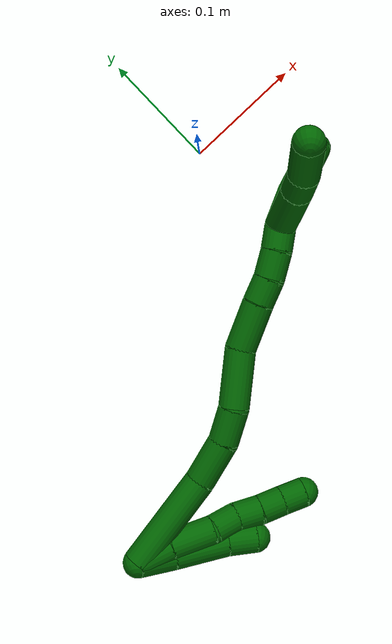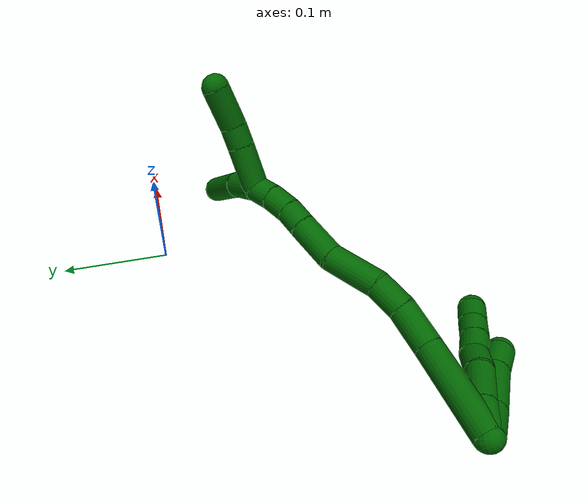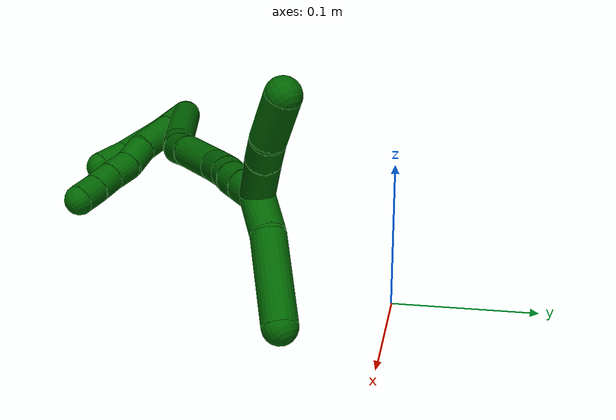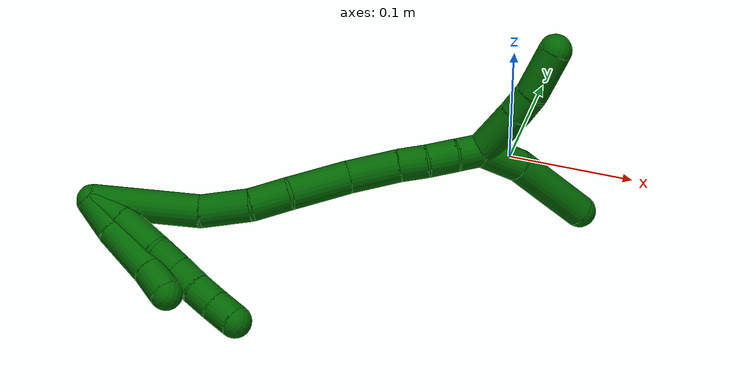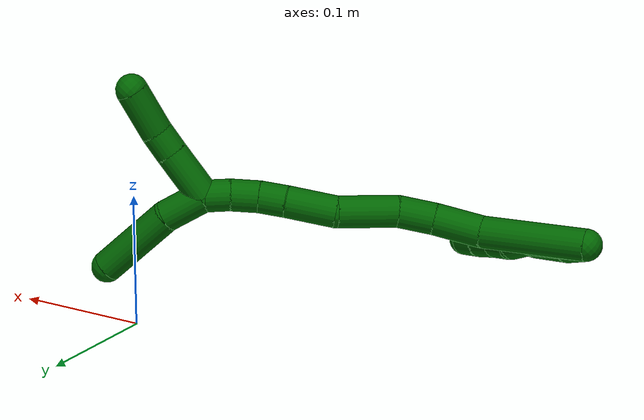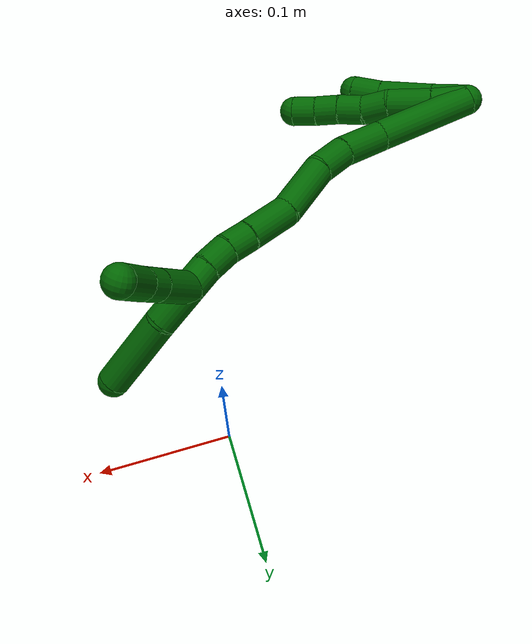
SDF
<sdf version="1.7">
 <world name="default">
  <model name="6">
   <static>0</static>
   <link name="6">
    <collision name="collision-cylinder-e_1_2_8">
     <pose>0.012249 -0.004984 -0.006094 2.45609 0.999569 1.9839</pose>
     <geometry><cylinder><radius>0.0125</radius><length>0.029121</length></cylinder></geometry>
     <surface>
      <friction><ode><mu>1.16</mu><mu2>1.16</mu2><slip1>0</slip1><slip2>0</slip2></ode></friction>
      <contact><ode><kp>1e+06</kp><kd>1</kd><max_vel>0</max_vel><min_depth>0.001</min_depth></ode></contact>
     </surface>
    </collision>
    <visual name="visual-cylinder-e_1_2_8">
     <pose>0.012249 -0.004984 -0.006094 2.45609 0.999569 1.9839</pose>
     <geometry><cylinder><radius>0.0125</radius><length>0.029121</length></cylinder></geometry>
     <material><ambient>0 0.392157 0.003922 1</ambient></material>
    </visual>
    <collision name="collision-cylinder-e_2_8_9">
     <pose>0.039446 -0.018232 -0.018688 2.23725 0.957837 1.63745</pose>
     <geometry><cylinder><radius>0.0125</radius><length>0.036552</length></cylinder></geometry>
     <surface>
      <friction><ode><mu>1.16</mu><mu2>1.16</mu2><slip1>0</slip1><slip2>0</slip2></ode></friction>
      <contact><ode><kp>1e+06</kp><kd>1</kd><max_vel>0</max_vel><min_depth>0.001</min_depth></ode></contact>
     </surface>
    </collision>
    <visual name="visual-cylinder-e_2_8_9">
     <pose>0.039446 -0.018232 -0.018688 2.23725 0.957837 1.63745</pose>
     <geometry><cylinder><radius>0.0125</radius><length>0.036552</length></cylinder></geometry>
     <material><ambient>0 0.392157 0.003922 1</ambient></material>
    </visual>
    <collision name="collision-cylinder-e_3_9_10">
     <pose>0.062225 -0.031756 -0.031349 2.43497 0.768327 1.66248</pose>
     <geometry><cylinder><radius>0.0125</radius><length>0.022534</length></cylinder></geometry>
     <surface>
      <friction><ode><mu>1.16</mu><mu2>1.16</mu2><slip1>0</slip1><slip2>0</slip2></ode></friction>
      <contact><ode><kp>1e+06</kp><kd>1</kd><max_vel>0</max_vel><min_depth>0.001</min_depth></ode></contact>
     </surface>
    </collision>
    <visual name="visual-cylinder-e_3_9_10">
     <pose>0.062225 -0.031756 -0.031349 2.43497 0.768327 1.66248</pose>
     <geometry><cylinder><radius>0.0125</radius><length>0.022534</length></cylinder></geometry>
     <material><ambient>0 0.392157 0.003922 1</ambient></material>
    </visual>
    <collision name="collision-cylinder-e_4_10_11">
     <pose>0.078904 -0.042249 -0.040952 2.15237 0.954896 1.52925</pose>
     <geometry><cylinder><radius>0.0125</radius><length>0.021682</length></cylinder></geometry>
     <surface>
      <friction><ode><mu>1.16</mu><mu2>1.16</mu2><slip1>0</slip1><slip2>0</slip2></ode></friction>
      <contact><ode><kp>1e+06</kp><kd>1</kd><max_vel>0</max_vel><min_depth>0.001</min_depth></ode></contact>
     </surface>
    </collision>
    <visual name="visual-cylinder-e_4_10_11">
     <pose>0.078904 -0.042249 -0.040952 2.15237 0.954896 1.52925</pose>
     <geometry><cylinder><radius>0.0125</radius><length>0.021682</length></cylinder></geometry>
     <material><ambient>0 0.392157 0.003922 1</ambient></material>
    </visual>
    <collision name="collision-cylinder-e_5_11_12">
     <pose>0.095772 -0.051917 -0.048397 2.30535 0.930435 1.69247</pose>
     <geometry><cylinder><radius>0.0125</radius><length>0.020001</length></cylinder></geometry>
     <surface>
      <friction><ode><mu>1.16</mu><mu2>1.16</mu2><slip1>0</slip1><slip2>0</slip2></ode></friction>
      <contact><ode><kp>1e+06</kp><kd>1</kd><max_vel>0</max_vel><min_depth>0.001</min_depth></ode></contact>
     </surface>
    </collision>
    <visual name="visual-cylinder-e_5_11_12">
     <pose>0.095772 -0.051917 -0.048397 2.30535 0.930435 1.69247</pose>
     <geometry><cylinder><radius>0.0125</radius><length>0.020001</length></cylinder></geometry>
     <material><ambient>0 0.392157 0.003922 1</ambient></material>
    </visual>
    <collision name="collision-cylinder-e_6_12_6">
     <pose>0.112231 -0.060509 -0.055949 2.27723 0.996136 1.73466</pose>
     <geometry><cylinder><radius>0.0125</radius><length>0.020111</length></cylinder></geometry>
     <surface>
      <friction><ode><mu>1.16</mu><mu2>1.16</mu2><slip1>0</slip1><slip2>0</slip2></ode></friction>
      <contact><ode><kp>1e+06</kp><kd>1</kd><max_vel>0</max_vel><min_depth>0.001</min_depth></ode></contact>
     </surface>
    </collision>
    <visual name="visual-cylinder-e_6_12_6">
     <pose>0.112231 -0.060509 -0.055949 2.27723 0.996136 1.73466</pose>
     <geometry><cylinder><radius>0.0125</radius><length>0.020111</length></cylinder></geometry>
     <material><ambient>0 0.392157 0.003922 1</ambient></material>
    </visual>
    <collision name="collision-cylinder-e_1_2_13">
     <pose>0.010677 -0.009457 -0.004768 2.03783 0.78946 1.18973</pose>
     <geometry><cylinder><radius>0.0125</radius><length>0.030077</length></cylinder></geometry>
     <surface>
      <friction><ode><mu>1.16</mu><mu2>1.16</mu2><slip1>0</slip1><slip2>0</slip2></ode></friction>
      <contact><ode><kp>1e+06</kp><kd>1</kd><max_vel>0</max_vel><min_depth>0.001</min_depth></ode></contact>
     </surface>
    </collision>
    <visual name="visual-cylinder-e_1_2_13">
     <pose>0.010677 -0.009457 -0.004768 2.03783 0.78946 1.18973</pose>
     <geometry><cylinder><radius>0.0125</radius><length>0.030077</length></cylinder></geometry>
     <material><ambient>0 0.392157 0.003922 1</ambient></material>
    </visual>
    <collision name="collision-cylinder-e_2_13_14">
     <pose>0.039448 -0.031001 -0.015984 2.06079 0.922724 1.38389</pose>
     <geometry><cylinder><radius>0.0125</radius><length>0.045391</length></cylinder></geometry>
     <surface>
      <friction><ode><mu>1.16</mu><mu2>1.16</mu2><slip1>0</slip1><slip2>0</slip2></ode></friction>
      <contact><ode><kp>1e+06</kp><kd>1</kd><max_vel>0</max_vel><min_depth>0.001</min_depth></ode></contact>
     </surface>
    </collision>
    <visual name="visual-cylinder-e_2_13_14">
     <pose>0.039448 -0.031001 -0.015984 2.06079 0.922724 1.38389</pose>
     <geometry><cylinder><radius>0.0125</radius><length>0.045391</length></cylinder></geometry>
     <material><ambient>0 0.392157 0.003922 1</ambient></material>
    </visual>
    <collision name="collision-cylinder-e_3_14_5">
     <pose>0.067198 -0.050313 -0.024673 1.87161 0.906306 1.16802</pose>
     <geometry><cylinder><radius>0.0125</radius><length>0.024532</length></cylinder></geometry>
     <surface>
      <friction><ode><mu>1.16</mu><mu2>1.16</mu2><slip1>0</slip1><slip2>0</slip2></ode></friction>
      <contact><ode><kp>1e+06</kp><kd>1</kd><max_vel>0</max_vel><min_depth>0.001</min_depth></ode></contact>
     </surface>
    </collision>
    <visual name="visual-cylinder-e_3_14_5">
     <pose>0.067198 -0.050313 -0.024673 1.87161 0.906306 1.16802</pose>
     <geometry><cylinder><radius>0.0125</radius><length>0.024532</length></cylinder></geometry>
     <material><ambient>0 0.392157 0.003922 1</ambient></material>
    </visual>
    <collision name="collision-cylinder-e_1_2_15">
     <pose>0.033321 0.005866 -0.02351 -2.8971 0.942052 -2.66813</pose>
     <geometry><cylinder><radius>0.0125</radius><length>0.0824</length></cylinder></geometry>
     <surface>
      <friction><ode><mu>1.16</mu><mu2>1.16</mu2><slip1>0</slip1><slip2>0</slip2></ode></friction>
      <contact><ode><kp>1e+06</kp><kd>1</kd><max_vel>0</max_vel><min_depth>0.001</min_depth></ode></contact>
     </surface>
    </collision>
    <visual name="visual-cylinder-e_1_2_15">
     <pose>0.033321 0.005866 -0.02351 -2.8971 0.942052 -2.66813</pose>
     <geometry><cylinder><radius>0.0125</radius><length>0.0824</length></cylinder></geometry>
     <material><ambient>0 0.392157 0.003922 1</ambient></material>
    </visual>
    <collision name="collision-cylinder-e_2_15_16">
     <pose>0.082044 0.018308 -0.056155 -2.51756 0.93968 -2.00973</pose>
     <geometry><cylinder><radius>0.0125</radius><length>0.038153</length></cylinder></geometry>
     <surface>
      <friction><ode><mu>1.16</mu><mu2>1.16</mu2><slip1>0</slip1><slip2>0</slip2></ode></friction>
      <contact><ode><kp>1e+06</kp><kd>1</kd><max_vel>0</max_vel><min_depth>0.001</min_depth></ode></contact>
     </surface>
    </collision>
    <visual name="visual-cylinder-e_2_15_16">
     <pose>0.082044 0.018308 -0.056155 -2.51756 0.93968 -2.00973</pose>
     <geometry><cylinder><radius>0.0125</radius><length>0.038153</length></cylinder></geometry>
     <material><ambient>0 0.392157 0.003922 1</ambient></material>
    </visual>
    <collision name="collision-cylinder-e_3_16_17">
     <pose>0.107171 0.032513 -0.073106 -2.3684 0.727535 -1.50387</pose>
     <geometry><cylinder><radius>0.0125</radius><length>0.029248</length></cylinder></geometry>
     <surface>
      <friction><ode><mu>1.16</mu><mu2>1.16</mu2><slip1>0</slip1><slip2>0</slip2></ode></friction>
      <contact><ode><kp>1e+06</kp><kd>1</kd><max_vel>0</max_vel><min_depth>0.001</min_depth></ode></contact>
     </surface>
    </collision>
    <visual name="visual-cylinder-e_3_16_17">
     <pose>0.107171 0.032513 -0.073106 -2.3684 0.727535 -1.50387</pose>
     <geometry><cylinder><radius>0.0125</radius><length>0.029248</length></cylinder></geometry>
     <material><ambient>0 0.392157 0.003922 1</ambient></material>
    </visual>
    <collision name="collision-cylinder-e_4_17_18">
     <pose>0.128198 0.052906 -0.09734 -2.48071 0.497772 -1.27536</pose>
     <geometry><cylinder><radius>0.0125</radius><length>0.047338</length></cylinder></geometry>
     <surface>
      <friction><ode><mu>1.16</mu><mu2>1.16</mu2><slip1>0</slip1><slip2>0</slip2></ode></friction>
      <contact><ode><kp>1e+06</kp><kd>1</kd><max_vel>0</max_vel><min_depth>0.001</min_depth></ode></contact>
     </surface>
    </collision>
    <visual name="visual-cylinder-e_4_17_18">
     <pose>0.128198 0.052906 -0.09734 -2.48071 0.497772 -1.27536</pose>
     <geometry><cylinder><radius>0.0125</radius><length>0.047338</length></cylinder></geometry>
     <material><ambient>0 0.392157 0.003922 1</ambient></material>
    </visual>
    <collision name="collision-cylinder-e_5_18_19">
     <pose>0.1534 0.074699 -0.124317 -2.43424 0.78571 -1.68602</pose>
     <geometry><cylinder><radius>0.0125</radius><length>0.039305</length></cylinder></geometry>
     <surface>
      <friction><ode><mu>1.16</mu><mu2>1.16</mu2><slip1>0</slip1><slip2>0</slip2></ode></friction>
      <contact><ode><kp>1e+06</kp><kd>1</kd><max_vel>0</max_vel><min_depth>0.001</min_depth></ode></contact>
     </surface>
    </collision>
    <visual name="visual-cylinder-e_5_18_19">
     <pose>0.1534 0.074699 -0.124317 -2.43424 0.78571 -1.68602</pose>
     <geometry><cylinder><radius>0.0125</radius><length>0.039305</length></cylinder></geometry>
     <material><ambient>0 0.392157 0.003922 1</ambient></material>
    </visual>
    <collision name="collision-cylinder-e_6_19_20">
     <pose>0.174969 0.087921 -0.1408 -2.52544 0.812917 -1.86837</pose>
     <geometry><cylinder><radius>0.0125</radius><length>0.021117</length></cylinder></geometry>
     <surface>
      <friction><ode><mu>1.16</mu><mu2>1.16</mu2><slip1>0</slip1><slip2>0</slip2></ode></friction>
      <contact><ode><kp>1e+06</kp><kd>1</kd><max_vel>0</max_vel><min_depth>0.001</min_depth></ode></contact>
     </surface>
    </collision>
    <visual name="visual-cylinder-e_6_19_20">
     <pose>0.174969 0.087921 -0.1408 -2.52544 0.812917 -1.86837</pose>
     <geometry><cylinder><radius>0.0125</radius><length>0.021117</length></cylinder></geometry>
     <material><ambient>0 0.392157 0.003922 1</ambient></material>
    </visual>
    <collision name="collision-cylinder-e_7_20_21">
     <pose>0.189338 0.097294 -0.153943 -2.5193 0.646092 -1.61095</pose>
     <geometry><cylinder><radius>0.0125</radius><length>0.022257</length></cylinder></geometry>
     <surface>
      <friction><ode><mu>1.16</mu><mu2>1.16</mu2><slip1>0</slip1><slip2>0</slip2></ode></friction>
      <contact><ode><kp>1e+06</kp><kd>1</kd><max_vel>0</max_vel><min_depth>0.001</min_depth></ode></contact>
     </surface>
    </collision>
    <visual name="visual-cylinder-e_7_20_21">
     <pose>0.189338 0.097294 -0.153943 -2.5193 0.646092 -1.61095</pose>
     <geometry><cylinder><radius>0.0125</radius><length>0.022257</length></cylinder></geometry>
     <material><ambient>0 0.392157 0.003922 1</ambient></material>
    </visual>
    <collision name="collision-cylinder-e_8_21_1">
     <pose>0.201045 0.107299 -0.168475 -2.55834 0.51921 -1.4487</pose>
     <geometry><cylinder><radius>0.0125</radius><length>0.020182</length></cylinder></geometry>
     <surface>
      <friction><ode><mu>1.16</mu><mu2>1.16</mu2><slip1>0</slip1><slip2>0</slip2></ode></friction>
      <contact><ode><kp>1e+06</kp><kd>1</kd><max_vel>0</max_vel><min_depth>0.001</min_depth></ode></contact>
     </surface>
    </collision>
    <visual name="visual-cylinder-e_8_21_1">
     <pose>0.201045 0.107299 -0.168475 -2.55834 0.51921 -1.4487</pose>
     <geometry><cylinder><radius>0.0125</radius><length>0.020182</length></cylinder></geometry>
     <material><ambient>0 0.392157 0.003922 1</ambient></material>
    </visual>
    <collision name="collision-cylinder-e_1_1_22">
     <pose>0.212555 0.111865 -0.191645 3.12526 0.389148 3.05874</pose>
     <geometry><cylinder><radius>0.0125</radius><length>0.034281</length></cylinder></geometry>
     <surface>
      <friction><ode><mu>1.16</mu><mu2>1.16</mu2><slip1>0</slip1><slip2>0</slip2></ode></friction>
      <contact><ode><kp>1e+06</kp><kd>1</kd><max_vel>0</max_vel><min_depth>0.001</min_depth></ode></contact>
     </surface>
    </collision>
    <visual name="visual-cylinder-e_1_1_22">
     <pose>0.212555 0.111865 -0.191645 3.12526 0.389148 3.05874</pose>
     <geometry><cylinder><radius>0.0125</radius><length>0.034281</length></cylinder></geometry>
     <material><ambient>0 0.392157 0.003922 1</ambient></material>
    </visual>
    <collision name="collision-cylinder-e_2_22_4">
     <pose>0.228059 0.104182 -0.23822 2.90448 0.277439 1.72894</pose>
     <geometry><cylinder><radius>0.0125</radius><length>0.065719</length></cylinder></geometry>
     <surface>
      <friction><ode><mu>1.16</mu><mu2>1.16</mu2><slip1>0</slip1><slip2>0</slip2></ode></friction>
      <contact><ode><kp>1e+06</kp><kd>1</kd><max_vel>0</max_vel><min_depth>0.001</min_depth></ode></contact>
     </surface>
    </collision>
    <visual name="visual-cylinder-e_2_22_4">
     <pose>0.228059 0.104182 -0.23822 2.90448 0.277439 1.72894</pose>
     <geometry><cylinder><radius>0.0125</radius><length>0.065719</length></cylinder></geometry>
     <material><ambient>0 0.392157 0.003922 1</ambient></material>
    </visual>
    <collision name="collision-cylinder-e_1_1_23">
     <pose>0.220814 0.126213 -0.17238 -1.33347 0.794495 -0.6378</pose>
     <geometry><cylinder><radius>0.0125</radius><length>0.041378</length></cylinder></geometry>
     <surface>
      <friction><ode><mu>1.16</mu><mu2>1.16</mu2><slip1>0</slip1><slip2>0</slip2></ode></friction>
      <contact><ode><kp>1e+06</kp><kd>1</kd><max_vel>0</max_vel><min_depth>0.001</min_depth></ode></contact>
     </surface>
    </collision>
    <visual name="visual-cylinder-e_1_1_23">
     <pose>0.220814 0.126213 -0.17238 -1.33347 0.794495 -0.6378</pose>
     <geometry><cylinder><radius>0.0125</radius><length>0.041378</length></cylinder></geometry>
     <material><ambient>0 0.392157 0.003922 1</ambient></material>
    </visual>
    <collision name="collision-cylinder-e_2_23_24">
     <pose>0.242429 0.147525 -0.167097 -1.31679 0.742864 -0.585302</pose>
     <geometry><cylinder><radius>0.0125</radius><length>0.020263</length></cylinder></geometry>
     <surface>
      <friction><ode><mu>1.16</mu><mu2>1.16</mu2><slip1>0</slip1><slip2>0</slip2></ode></friction>
      <contact><ode><kp>1e+06</kp><kd>1</kd><max_vel>0</max_vel><min_depth>0.001</min_depth></ode></contact>
     </surface>
    </collision>
    <visual name="visual-cylinder-e_2_23_24">
     <pose>0.242429 0.147525 -0.167097 -1.31679 0.742864 -0.585302</pose>
     <geometry><cylinder><radius>0.0125</radius><length>0.020263</length></cylinder></geometry>
     <material><ambient>0 0.392157 0.003922 1</ambient></material>
    </visual>
    <collision name="collision-cylinder-e_3_24_3">
     <pose>0.259422 0.170224 -0.160171 -1.25533 0.557062 -0.409157</pose>
     <geometry><cylinder><radius>0.0125</radius><length>0.038359</length></cylinder></geometry>
     <surface>
      <friction><ode><mu>1.16</mu><mu2>1.16</mu2><slip1>0</slip1><slip2>0</slip2></ode></friction>
      <contact><ode><kp>1e+06</kp><kd>1</kd><max_vel>0</max_vel><min_depth>0.001</min_depth></ode></contact>
     </surface>
    </collision>
    <visual name="visual-cylinder-e_3_24_3">
     <pose>0.259422 0.170224 -0.160171 -1.25533 0.557062 -0.409157</pose>
     <geometry><cylinder><radius>0.0125</radius><length>0.038359</length></cylinder></geometry>
     <material><ambient>0 0.392157 0.003922 1</ambient></material>
    </visual>
    <collision name="collision-sphere-3">
     <pose>0.269562 0.185701 -0.15512 0 -0 0</pose>
     <geometry><sphere><radius>0.0125</radius></sphere></geometry>
     <surface>
      <friction><ode><mu>1.16</mu><mu2>1.16</mu2><slip1>0</slip1><slip2>0</slip2></ode></friction>
      <contact><ode><kp>1e+06</kp><kd>1</kd><max_vel>0</max_vel><min_depth>0.001</min_depth></ode></contact>
     </surface>
    </collision>
    <visual name="visual-sphere-3">
     <pose>0.269562 0.185701 -0.15512 0 -0 0</pose>
     <geometry><sphere><radius>0.0125</radius></sphere></geometry>
     <material><ambient>0 0.392157 0.003922 1</ambient></material>
    </visual>
    <collision name="collision-sphere-24">
     <pose>0.249282 0.154748 -0.165222 0 -0 0</pose>
     <geometry><sphere><radius>0.0125</radius></sphere></geometry>
     <surface>
      <friction><ode><mu>1.16</mu><mu2>1.16</mu2><slip1>0</slip1><slip2>0</slip2></ode></friction>
      <contact><ode><kp>1e+06</kp><kd>1</kd><max_vel>0</max_vel><min_depth>0.001</min_depth></ode></contact>
     </surface>
    </collision>
    <visual name="visual-sphere-24">
     <pose>0.249282 0.154748 -0.165222 0 -0 0</pose>
     <geometry><sphere><radius>0.0125</radius></sphere></geometry>
     <material><ambient>0 0.392157 0.003922 1</ambient></material>
    </visual>
    <collision name="collision-sphere-23">
     <pose>0.235576 0.140302 -0.168972 0 -0 0</pose>
     <geometry><sphere><radius>0.0125</radius></sphere></geometry>
     <surface>
      <friction><ode><mu>1.16</mu><mu2>1.16</mu2><slip1>0</slip1><slip2>0</slip2></ode></friction>
      <contact><ode><kp>1e+06</kp><kd>1</kd><max_vel>0</max_vel><min_depth>0.001</min_depth></ode></contact>
     </surface>
    </collision>
    <visual name="visual-sphere-23">
     <pose>0.235576 0.140302 -0.168972 0 -0 0</pose>
     <geometry><sphere><radius>0.0125</radius></sphere></geometry>
     <material><ambient>0 0.392157 0.003922 1</ambient></material>
    </visual>
    <collision name="collision-sphere-4">
     <pose>0.237059 0.096759 -0.268939 0 -0 0</pose>
     <geometry><sphere><radius>0.0125</radius></sphere></geometry>
     <surface>
      <friction><ode><mu>1.16</mu><mu2>1.16</mu2><slip1>0</slip1><slip2>0</slip2></ode></friction>
      <contact><ode><kp>1e+06</kp><kd>1</kd><max_vel>0</max_vel><min_depth>0.001</min_depth></ode></contact>
     </surface>
    </collision>
    <visual name="visual-sphere-4">
     <pose>0.237059 0.096759 -0.268939 0 -0 0</pose>
     <geometry><sphere><radius>0.0125</radius></sphere></geometry>
     <material><ambient>0 0.392157 0.003922 1</ambient></material>
    </visual>
    <collision name="collision-sphere-22">
     <pose>0.219059 0.111606 -0.207501 0 -0 0</pose>
     <geometry><sphere><radius>0.0125</radius></sphere></geometry>
     <surface>
      <friction><ode><mu>1.16</mu><mu2>1.16</mu2><slip1>0</slip1><slip2>0</slip2></ode></friction>
      <contact><ode><kp>1e+06</kp><kd>1</kd><max_vel>0</max_vel><min_depth>0.001</min_depth></ode></contact>
     </surface>
    </collision>
    <visual name="visual-sphere-22">
     <pose>0.219059 0.111606 -0.207501 0 -0 0</pose>
     <geometry><sphere><radius>0.0125</radius></sphere></geometry>
     <material><ambient>0 0.392157 0.003922 1</ambient></material>
    </visual>
    <collision name="collision-sphere-1">
     <pose>0.206052 0.112124 -0.175788 0 -0 0</pose>
     <geometry><sphere><radius>0.0125</radius></sphere></geometry>
     <surface>
      <friction><ode><mu>1.16</mu><mu2>1.16</mu2><slip1>0</slip1><slip2>0</slip2></ode></friction>
      <contact><ode><kp>1e+06</kp><kd>1</kd><max_vel>0</max_vel><min_depth>0.001</min_depth></ode></contact>
     </surface>
    </collision>
    <visual name="visual-sphere-1">
     <pose>0.206052 0.112124 -0.175788 0 -0 0</pose>
     <geometry><sphere><radius>0.0125</radius></sphere></geometry>
     <material><ambient>0 0.392157 0.003922 1</ambient></material>
    </visual>
    <collision name="collision-sphere-21">
     <pose>0.196038 0.102473 -0.161162 0 -0 0</pose>
     <geometry><sphere><radius>0.0125</radius></sphere></geometry>
     <surface>
      <friction><ode><mu>1.16</mu><mu2>1.16</mu2><slip1>0</slip1><slip2>0</slip2></ode></friction>
      <contact><ode><kp>1e+06</kp><kd>1</kd><max_vel>0</max_vel><min_depth>0.001</min_depth></ode></contact>
     </surface>
    </collision>
    <visual name="visual-sphere-21">
     <pose>0.196038 0.102473 -0.161162 0 -0 0</pose>
     <geometry><sphere><radius>0.0125</radius></sphere></geometry>
     <material><ambient>0 0.392157 0.003922 1</ambient></material>
    </visual>
    <collision name="collision-sphere-12">
     <pose>0.103791 -0.056351 -0.052402 0 -0 0</pose>
     <geometry><sphere><radius>0.0125</radius></sphere></geometry>
     <surface>
      <friction><ode><mu>1.16</mu><mu2>1.16</mu2><slip1>0</slip1><slip2>0</slip2></ode></friction>
      <contact><ode><kp>1e+06</kp><kd>1</kd><max_vel>0</max_vel><min_depth>0.001</min_depth></ode></contact>
     </surface>
    </collision>
    <visual name="visual-sphere-12">
     <pose>0.103791 -0.056351 -0.052402 0 -0 0</pose>
     <geometry><sphere><radius>0.0125</radius></sphere></geometry>
     <material><ambient>0 0.392157 0.003922 1</ambient></material>
    </visual>
    <collision name="collision-sphere-11">
     <pose>0.087753 -0.047482 -0.044392 0 -0 0</pose>
     <geometry><sphere><radius>0.0125</radius></sphere></geometry>
     <surface>
      <friction><ode><mu>1.16</mu><mu2>1.16</mu2><slip1>0</slip1><slip2>0</slip2></ode></friction>
      <contact><ode><kp>1e+06</kp><kd>1</kd><max_vel>0</max_vel><min_depth>0.001</min_depth></ode></contact>
     </surface>
    </collision>
    <visual name="visual-sphere-11">
     <pose>0.087753 -0.047482 -0.044392 0 -0 0</pose>
     <geometry><sphere><radius>0.0125</radius></sphere></geometry>
     <material><ambient>0 0.392157 0.003922 1</ambient></material>
    </visual>
    <collision name="collision-sphere-10">
     <pose>0.070055 -0.037016 -0.037511 0 -0 0</pose>
     <geometry><sphere><radius>0.0125</radius></sphere></geometry>
     <surface>
      <friction><ode><mu>1.16</mu><mu2>1.16</mu2><slip1>0</slip1><slip2>0</slip2></ode></friction>
      <contact><ode><kp>1e+06</kp><kd>1</kd><max_vel>0</max_vel><min_depth>0.001</min_depth></ode></contact>
     </surface>
    </collision>
    <visual name="visual-sphere-10">
     <pose>0.070055 -0.037016 -0.037511 0 -0 0</pose>
     <geometry><sphere><radius>0.0125</radius></sphere></geometry>
     <material><ambient>0 0.392157 0.003922 1</ambient></material>
    </visual>
    <collision name="collision-sphere-9">
     <pose>0.054395 -0.026496 -0.025188 0 -0 0</pose>
     <geometry><sphere><radius>0.0125</radius></sphere></geometry>
     <surface>
      <friction><ode><mu>1.16</mu><mu2>1.16</mu2><slip1>0</slip1><slip2>0</slip2></ode></friction>
      <contact><ode><kp>1e+06</kp><kd>1</kd><max_vel>0</max_vel><min_depth>0.001</min_depth></ode></contact>
     </surface>
    </collision>
    <visual name="visual-sphere-9">
     <pose>0.054395 -0.026496 -0.025188 0 -0 0</pose>
     <geometry><sphere><radius>0.0125</radius></sphere></geometry>
     <material><ambient>0 0.392157 0.003922 1</ambient></material>
    </visual>
    <collision name="collision-sphere-2">
     <geometry><sphere><radius>0.0125</radius></sphere></geometry>
     <surface>
      <friction><ode><mu>1.16</mu><mu2>1.16</mu2><slip1>0</slip1><slip2>0</slip2></ode></friction>
      <contact><ode><kp>1e+06</kp><kd>1</kd><max_vel>0</max_vel><min_depth>0.001</min_depth></ode></contact>
     </surface>
    </collision>
    <visual name="visual-sphere-2">
     <geometry><sphere><radius>0.0125</radius></sphere></geometry>
     <material><ambient>0 0.392157 0.003922 1</ambient></material>
    </visual>
    <collision name="collision-sphere-19">
     <pose>0.167301 0.083726 -0.134876 0 -0 0</pose>
     <geometry><sphere><radius>0.0125</radius></sphere></geometry>
     <surface>
      <friction><ode><mu>1.16</mu><mu2>1.16</mu2><slip1>0</slip1><slip2>0</slip2></ode></friction>
      <contact><ode><kp>1e+06</kp><kd>1</kd><max_vel>0</max_vel><min_depth>0.001</min_depth></ode></contact>
     </surface>
    </collision>
    <visual name="visual-sphere-19">
     <pose>0.167301 0.083726 -0.134876 0 -0 0</pose>
     <geometry><sphere><radius>0.0125</radius></sphere></geometry>
     <material><ambient>0 0.392157 0.003922 1</ambient></material>
    </visual>
    <collision name="collision-sphere-8">
     <pose>0.024497 -0.009967 -0.012188 0 -0 0</pose>
     <geometry><sphere><radius>0.0125</radius></sphere></geometry>
     <surface>
      <friction><ode><mu>1.16</mu><mu2>1.16</mu2><slip1>0</slip1><slip2>0</slip2></ode></friction>
      <contact><ode><kp>1e+06</kp><kd>1</kd><max_vel>0</max_vel><min_depth>0.001</min_depth></ode></contact>
     </surface>
    </collision>
    <visual name="visual-sphere-8">
     <pose>0.024497 -0.009967 -0.012188 0 -0 0</pose>
     <geometry><sphere><radius>0.0125</radius></sphere></geometry>
     <material><ambient>0 0.392157 0.003922 1</ambient></material>
    </visual>
    <collision name="collision-sphere-6">
     <pose>0.120671 -0.064666 -0.059497 0 -0 0</pose>
     <geometry><sphere><radius>0.0125</radius></sphere></geometry>
     <surface>
      <friction><ode><mu>1.16</mu><mu2>1.16</mu2><slip1>0</slip1><slip2>0</slip2></ode></friction>
      <contact><ode><kp>1e+06</kp><kd>1</kd><max_vel>0</max_vel><min_depth>0.001</min_depth></ode></contact>
     </surface>
    </collision>
    <visual name="visual-sphere-6">
     <pose>0.120671 -0.064666 -0.059497 0 -0 0</pose>
     <geometry><sphere><radius>0.0125</radius></sphere></geometry>
     <material><ambient>0 0.392157 0.003922 1</ambient></material>
    </visual>
    <collision name="collision-sphere-13">
     <pose>0.021354 -0.018913 -0.009537 0 -0 0</pose>
     <geometry><sphere><radius>0.0125</radius></sphere></geometry>
     <surface>
      <friction><ode><mu>1.16</mu><mu2>1.16</mu2><slip1>0</slip1><slip2>0</slip2></ode></friction>
      <contact><ode><kp>1e+06</kp><kd>1</kd><max_vel>0</max_vel><min_depth>0.001</min_depth></ode></contact>
     </surface>
    </collision>
    <visual name="visual-sphere-13">
     <pose>0.021354 -0.018913 -0.009537 0 -0 0</pose>
     <geometry><sphere><radius>0.0125</radius></sphere></geometry>
     <material><ambient>0 0.392157 0.003922 1</ambient></material>
    </visual>
    <collision name="collision-sphere-14">
     <pose>0.057542 -0.043089 -0.022432 0 -0 0</pose>
     <geometry><sphere><radius>0.0125</radius></sphere></geometry>
     <surface>
      <friction><ode><mu>1.16</mu><mu2>1.16</mu2><slip1>0</slip1><slip2>0</slip2></ode></friction>
      <contact><ode><kp>1e+06</kp><kd>1</kd><max_vel>0</max_vel><min_depth>0.001</min_depth></ode></contact>
     </surface>
    </collision>
    <visual name="visual-sphere-14">
     <pose>0.057542 -0.043089 -0.022432 0 -0 0</pose>
     <geometry><sphere><radius>0.0125</radius></sphere></geometry>
     <material><ambient>0 0.392157 0.003922 1</ambient></material>
    </visual>
    <collision name="collision-sphere-5">
     <pose>0.076854 -0.057538 -0.026914 0 -0 0</pose>
     <geometry><sphere><radius>0.0125</radius></sphere></geometry>
     <surface>
      <friction><ode><mu>1.16</mu><mu2>1.16</mu2><slip1>0</slip1><slip2>0</slip2></ode></friction>
      <contact><ode><kp>1e+06</kp><kd>1</kd><max_vel>0</max_vel><min_depth>0.001</min_depth></ode></contact>
     </surface>
    </collision>
    <visual name="visual-sphere-5">
     <pose>0.076854 -0.057538 -0.026914 0 -0 0</pose>
     <geometry><sphere><radius>0.0125</radius></sphere></geometry>
     <material><ambient>0 0.392157 0.003922 1</ambient></material>
    </visual>
    <collision name="collision-sphere-15">
     <pose>0.066642 0.011731 -0.047021 0 -0 0</pose>
     <geometry><sphere><radius>0.0125</radius></sphere></geometry>
     <surface>
      <friction><ode><mu>1.16</mu><mu2>1.16</mu2><slip1>0</slip1><slip2>0</slip2></ode></friction>
      <contact><ode><kp>1e+06</kp><kd>1</kd><max_vel>0</max_vel><min_depth>0.001</min_depth></ode></contact>
     </surface>
    </collision>
    <visual name="visual-sphere-15">
     <pose>0.066642 0.011731 -0.047021 0 -0 0</pose>
     <geometry><sphere><radius>0.0125</radius></sphere></geometry>
     <material><ambient>0 0.392157 0.003922 1</ambient></material>
    </visual>
    <collision name="collision-sphere-16">
     <pose>0.097446 0.024885 -0.06529 0 -0 0</pose>
     <geometry><sphere><radius>0.0125</radius></sphere></geometry>
     <surface>
      <friction><ode><mu>1.16</mu><mu2>1.16</mu2><slip1>0</slip1><slip2>0</slip2></ode></friction>
      <contact><ode><kp>1e+06</kp><kd>1</kd><max_vel>0</max_vel><min_depth>0.001</min_depth></ode></contact>
     </surface>
    </collision>
    <visual name="visual-sphere-16">
     <pose>0.097446 0.024885 -0.06529 0 -0 0</pose>
     <geometry><sphere><radius>0.0125</radius></sphere></geometry>
     <material><ambient>0 0.392157 0.003922 1</ambient></material>
    </visual>
    <collision name="collision-sphere-17">
     <pose>0.116896 0.040141 -0.080922 0 -0 0</pose>
     <geometry><sphere><radius>0.0125</radius></sphere></geometry>
     <surface>
      <friction><ode><mu>1.16</mu><mu2>1.16</mu2><slip1>0</slip1><slip2>0</slip2></ode></friction>
      <contact><ode><kp>1e+06</kp><kd>1</kd><max_vel>0</max_vel><min_depth>0.001</min_depth></ode></contact>
     </surface>
    </collision>
    <visual name="visual-sphere-17">
     <pose>0.116896 0.040141 -0.080922 0 -0 0</pose>
     <geometry><sphere><radius>0.0125</radius></sphere></geometry>
     <material><ambient>0 0.392157 0.003922 1</ambient></material>
    </visual>
    <collision name="collision-sphere-18">
     <pose>0.139499 0.065671 -0.113758 0 -0 0</pose>
     <geometry><sphere><radius>0.0125</radius></sphere></geometry>
     <surface>
      <friction><ode><mu>1.16</mu><mu2>1.16</mu2><slip1>0</slip1><slip2>0</slip2></ode></friction>
      <contact><ode><kp>1e+06</kp><kd>1</kd><max_vel>0</max_vel><min_depth>0.001</min_depth></ode></contact>
     </surface>
    </collision>
    <visual name="visual-sphere-18">
     <pose>0.139499 0.065671 -0.113758 0 -0 0</pose>
     <geometry><sphere><radius>0.0125</radius></sphere></geometry>
     <material><ambient>0 0.392157 0.003922 1</ambient></material>
    </visual>
    <collision name="collision-sphere-20">
     <pose>0.182638 0.092115 -0.146723 0 -0 0</pose>
     <geometry><sphere><radius>0.0125</radius></sphere></geometry>
     <surface>
      <friction><ode><mu>1.16</mu><mu2>1.16</mu2><slip1>0</slip1><slip2>0</slip2></ode></friction>
      <contact><ode><kp>1e+06</kp><kd>1</kd><max_vel>0</max_vel><min_depth>0.001</min_depth></ode></contact>
     </surface>
    </collision>
    <visual name="visual-sphere-20">
     <pose>0.182638 0.092115 -0.146723 0 -0 0</pose>
     <geometry><sphere><radius>0.0125</radius></sphere></geometry>
     <material><ambient>0 0.392157 0.003922 1</ambient></material>
    </visual>
    <inertial>
     <pose>0.122925 0.042079 -0.093896 0 -0 0</pose>
     <mass>0.75</mass>
     <inertia>
      <ixx>1.7e-05</ixx>
      <ixy>0</ixy>
      <ixz>0</ixz>
      <iyy>0.000102</iyy>
      <iyz>0</iyz>
      <izz>-0.000141</izz>
     </inertia>
    </inertial>
   </link>
   <pose>-0.266188 -0.210843 0.047815 0.736729 -0.381339 -0.345016</pose>
  </model>
 </world>
</sdf>
